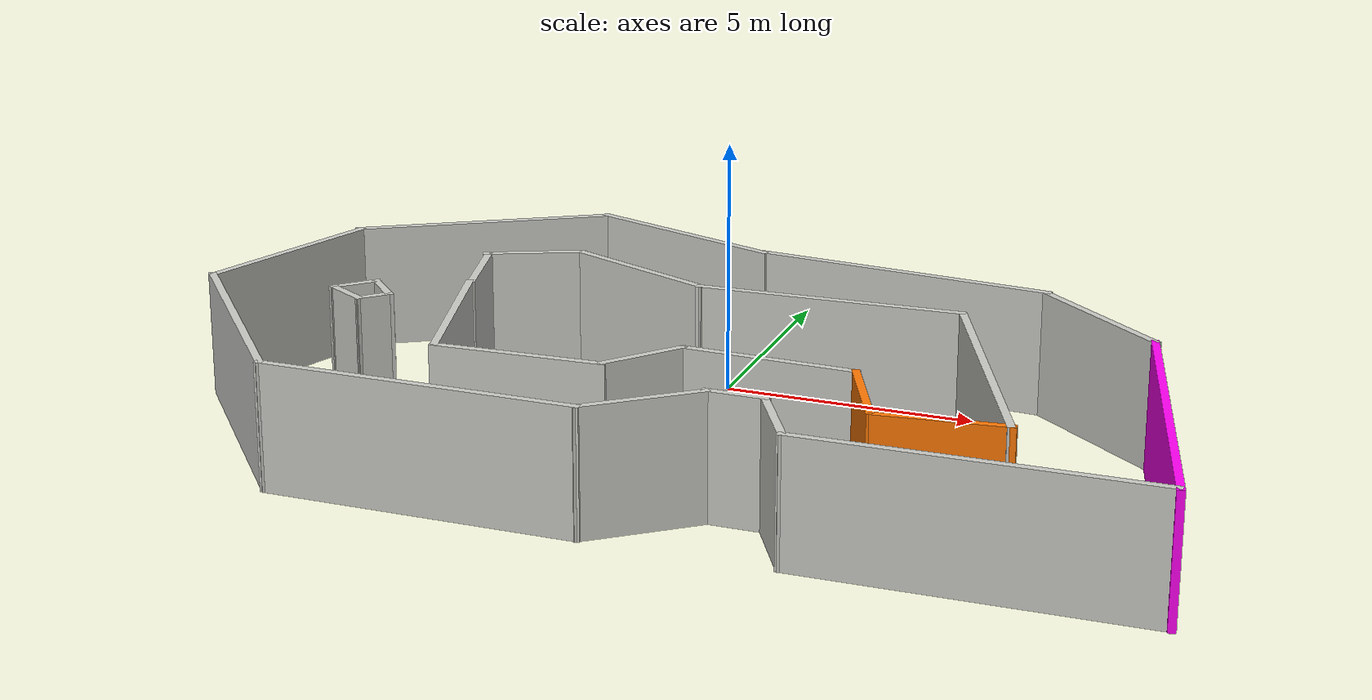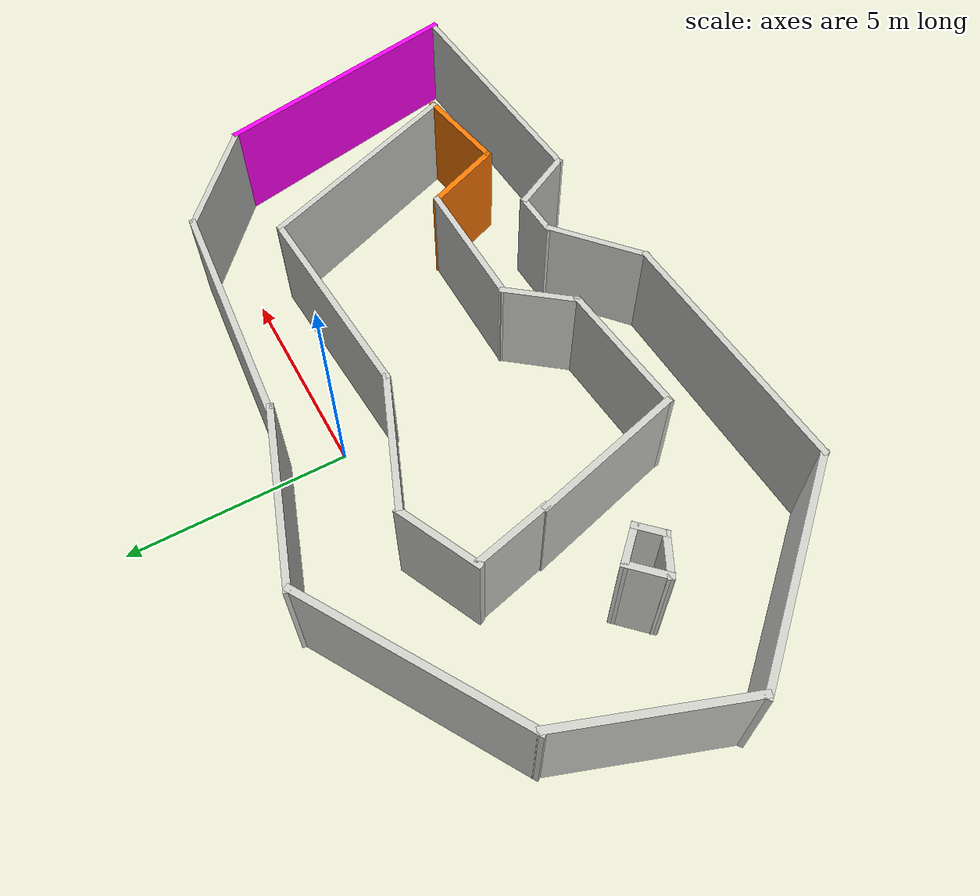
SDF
<?xml version='1.0'?>
<sdf version='1.6'>
  <model name='race_track'>
    <pose frame=''>0.559259 -2.71152 0 0 -0 0</pose>
    <link name='Wall_10'>
      <collision name='Wall_10_Collision'>
        <geometry>
          <box>
            <size>3.44729 0.15 2.5</size>
          </box>
        </geometry>
        <pose frame=''>0 0 1.25 0 -0 0</pose>
      </collision>
      <visual name='Wall_10_Visual'>
        <pose frame=''>0 0 1.25 0 -0 0</pose>
        <geometry>
          <box>
            <size>3.44729 0.15 2.5</size>
          </box>
        </geometry>
        <material>
          <script>
            <uri>file://media/materials/scripts/gazebo.material</uri>
            <name>Gazebo/CeilingTiled</name>
          </script>
          <ambient>0.996078 0.47451 0.0196078 1</ambient>
        </material>
      </visual>
      <pose frame=''>1.80805 -1.78402 0 0 0 -0.022772</pose>
    </link>
    <link name='Wall_11'>
      <collision name='Wall_11_Collision'>
        <geometry>
          <box>
            <size>2.17868 0.15 2.5</size>
          </box>
        </geometry>
        <pose frame=''>0 0 1.25 0 -0 0</pose>
      </collision>
      <visual name='Wall_11_Visual'>
        <pose frame=''>0 0 1.25 0 -0 0</pose>
        <geometry>
          <box>
            <size>2.17868 0.15 2.5</size>
          </box>
        </geometry>
        <material>
          <script>
            <uri>file://media/materials/scripts/gazebo.material</uri>
            <name>Gazebo/Grey</name>
          </script>
          <ambient>0.996078 0.47451 0.0196078 1</ambient>
        </material>
      </visual>
      <pose frame=''>3.86833 -2.74844 0 0 0 -1.15247</pose>
    </link>
    <link name='Wall_12'>
      <collision name='Wall_12_Collision'>
        <geometry>
          <box>
            <size>2.54418 0.15 2.5</size>
          </box>
        </geometry>
        <pose frame=''>0 0 1.25 0 -0 0</pose>
      </collision>
      <visual name='Wall_12_Visual'>
        <pose frame=''>0 0 1.25 0 -0 0</pose>
        <geometry>
          <box>
            <size>2.54418 0.15 2.5</size>
          </box>
        </geometry>
        <material>
          <script>
            <uri>file://media/materials/scripts/gazebo.material</uri>
            <name>Gazebo/Grey</name>
          </script>
          <ambient>0.996078 0.47451 0.0196078 1</ambient>
        </material>
      </visual>
      <pose frame=''>5.50444 -3.53539 0 0 -0 0.117152</pose>
    </link>
    <link name='Wall_13'>
      <collision name='Wall_13_Collision'>
        <geometry>
          <box>
            <size>5.83067 0.15 2.5</size>
          </box>
        </geometry>
        <pose frame=''>0 0 1.25 0 -0 0</pose>
      </collision>
      <visual name='Wall_13_Visual'>
        <pose frame=''>0 0 1.25 0 -0 0</pose>
        <geometry>
          <box>
            <size>5.83067 0.15 2.5</size>
          </box>
        </geometry>
        <material>
          <script>
            <uri>file://media/materials/scripts/gazebo.material</uri>
            <name>Gazebo/CeilingTiled</name>
          </script>
          <ambient>0.996078 0.47451 0.0196078 1</ambient>
        </material>
      </visual>
      <pose frame=''>5.53053 -0.788558 0 0 -0 1.97904</pose>
    </link>
    <link name='Wall_14'>
      <collision name='Wall_14_Collision'>
        <geometry>
          <box>
            <size>5.26793 0.15 2.5</size>
          </box>
        </geometry>
        <pose frame=''>0 0 1.25 0 -0 0</pose>
      </collision>
      <visual name='Wall_14_Visual'>
        <pose frame=''>0 0 1.25 0 -0 0</pose>
        <geometry>
          <box>
            <size>5.26793 0.15 2.5</size>
          </box>
        </geometry>
        <material>
          <script>
            <uri>file://media/materials/scripts/gazebo.material</uri>
            <name>Gazebo/CeilingTiled</name>
          </script>
          <ambient>0.996078 0.47451 0.0196078 1</ambient>
        </material>
      </visual>
      <pose frame=''>1.83029 1.69592 0 0 0 -3.08689</pose>
    </link>
    <link name='Wall_16'>
      <collision name='Wall_16_Collision'>
        <geometry>
          <box>
            <size>3.26126 0.15 2.5</size>
          </box>
        </geometry>
        <pose frame=''>0 0 1.25 0 -0 0</pose>
      </collision>
      <visual name='Wall_16_Visual'>
        <pose frame=''>0 0 1.25 0 -0 0</pose>
        <geometry>
          <box>
            <size>3.26126 0.15 2.5</size>
          </box>
        </geometry>
        <material>
          <script>
            <uri>file://media/materials/scripts/gazebo.material</uri>
            <name>Gazebo/CeilingTiled</name>
          </script>
          <ambient>0.996078 0.47451 0.0196078 1</ambient>
        </material>
      </visual>
      <pose frame=''>-2.17369 2.12243 0 0 -0 2.76891</pose>
    </link>
    <link name='Wall_17'>
      <collision name='Wall_17_Collision'>
        <geometry>
          <box>
            <size>2.03724 0.15 2.5</size>
          </box>
        </geometry>
        <pose frame=''>0 0 1.25 0 -0 0</pose>
      </collision>
      <visual name='Wall_17_Visual'>
        <pose frame=''>0 0 1.25 0 -0 0</pose>
        <geometry>
          <box>
            <size>2.03724 0.15 2.5</size>
          </box>
        </geometry>
        <material>
          <script>
            <uri>file://media/materials/scripts/gazebo.material</uri>
            <name>Gazebo/CeilingTiled</name>
          </script>
          <ambient>0.996078 0.47451 0.0196078 1</ambient>
        </material>
      </visual>
      <pose frame=''>-4.53244 2.32984 0 0 0 -2.71087</pose>
    </link>
    <link name='Wall_19'>
      <collision name='Wall_19_Collision'>
        <geometry>
          <box>
            <size>7 0.15 2.5</size>
          </box>
        </geometry>
        <pose frame=''>0 0 1.25 0 -0 0</pose>
      </collision>
      <visual name='Wall_19_Visual'>
        <pose frame=''>0 0 1.25 0 -0 0</pose>
        <geometry>
          <box>
            <size>7 0.15 2.5</size>
          </box>
        </geometry>
        <material>
          <script>
            <uri>file://media/materials/scripts/gazebo.material</uri>
            <name>Gazebo/Grey</name>
          </script>
          <ambient>1 0.00784314 0.952941 1</ambient>
        </material>
      </visual>
      <pose frame=''>8.95843 -1.75006 0 0 0 -1.309</pose>
    </link>
    <link name='Wall_20'>
      <collision name='Wall_20_Collision'>
        <geometry>
          <box>
            <size>6.77056 0.15 2.5</size>
          </box>
        </geometry>
        <pose frame=''>0 0 1.25 0 -0 0</pose>
      </collision>
      <visual name='Wall_20_Visual'>
        <pose frame=''>0 0 1.25 0 -0 0</pose>
        <geometry>
          <box>
            <size>6.77056 0.15 2.5</size>
          </box>
        </geometry>
        <material>
          <script>
            <uri>file://media/materials/scripts/gazebo.material</uri>
            <name>Gazebo/CeilingTiled</name>
          </script>
          <ambient>1 0.00784314 0.952941 1</ambient>
        </material>
      </visual>
      <pose frame=''>6.49961 -5.05836 0 0 0 -3.13097</pose>
    </link>
    <link name='Wall_21'>
      <collision name='Wall_21_Collision'>
        <geometry>
          <box>
            <size>1.77767 0.15 2.5</size>
          </box>
        </geometry>
        <pose frame=''>0 0 1.25 0 -0 0</pose>
      </collision>
      <visual name='Wall_21_Visual'>
        <pose frame=''>0 0 1.25 0 -0 0</pose>
        <geometry>
          <box>
            <size>1.77767 0.15 2.5</size>
          </box>
        </geometry>
        <material>
          <script>
            <uri>file://media/materials/scripts/gazebo.material</uri>
            <name>Gazebo/CeilingTiled</name>
          </script>
          <ambient>1 0.00784314 0.952941 1</ambient>
        </material>
      </visual>
      <pose frame=''>2.79738 -4.38041 0 0 -0 2.07356</pose>
    </link>
    <link name='Wall_22'>
      <collision name='Wall_22_Collision'>
        <geometry>
          <box>
            <size>1.25 0.15 2.5</size>
          </box>
        </geometry>
        <pose frame=''>0 0 1.25 0 -0 0</pose>
      </collision>
      <visual name='Wall_22_Visual'>
        <pose frame=''>0 0 1.25 0 -0 0</pose>
        <geometry>
          <box>
            <size>1.25 0.15 2.5</size>
          </box>
        </geometry>
        <material>
          <script>
            <uri>file://media/materials/scripts/gazebo.material</uri>
            <name>Gazebo/CeilingTiled</name>
          </script>
          <ambient>1 0.00784314 0.952941 1</ambient>
        </material>
      </visual>
      <pose frame=''>1.85523 -3.63211 0 0 -0 3.14159</pose>
    </link>
    <link name='Wall_23'>
      <collision name='Wall_23_Collision'>
        <geometry>
          <box>
            <size>2.48588 0.15 2.5</size>
          </box>
        </geometry>
        <pose frame=''>0 0 1.25 0 -0 0</pose>
      </collision>
      <visual name='Wall_23_Visual'>
        <pose frame=''>0 0 1.25 0 -0 0</pose>
        <geometry>
          <box>
            <size>2.48588 0.15 2.5</size>
          </box>
        </geometry>
        <material>
          <script>
            <uri>file://media/materials/scripts/gazebo.material</uri>
            <name>Gazebo/CeilingTiled</name>
          </script>
          <ambient>1 0.00784314 0.952941 1</ambient>
        </material>
      </visual>
      <pose frame=''>0.404026 -4.41019 0 0 0 -2.45218</pose>
    </link>
    <link name='Wall_24'>
      <collision name='Wall_24_Collision'>
        <geometry>
          <box>
            <size>6.25 0.15 2.5</size>
          </box>
        </geometry>
        <pose frame=''>0 0 1.25 0 -0 0</pose>
      </collision>
      <visual name='Wall_24_Visual'>
        <pose frame=''>0 0 1.25 0 -0 0</pose>
        <geometry>
          <box>
            <size>6.25 0.15 2.5</size>
          </box>
        </geometry>
        <material>
          <script>
            <uri>file://media/materials/scripts/gazebo.material</uri>
            <name>Gazebo/CeilingTiled</name>
          </script>
          <ambient>1 0.00784314 0.952941 1</ambient>
        </material>
      </visual>
      <pose frame=''>-3.54718 -5.15309 0 0 -0 3.14159</pose>
    </link>
    <link name='Wall_25'>
      <collision name='Wall_25_Collision'>
        <geometry>
          <box>
            <size>5.31282 0.15 2.5</size>
          </box>
        </geometry>
        <pose frame=''>0 0 1.25 0 -0 0</pose>
      </collision>
      <visual name='Wall_25_Visual'>
        <pose frame=''>0 0 1.25 0 -0 0</pose>
        <geometry>
          <box>
            <size>5.31282 0.15 2.5</size>
          </box>
        </geometry>
        <material>
          <script>
            <uri>file://media/materials/scripts/gazebo.material</uri>
            <name>Gazebo/CeilingTiled</name>
          </script>
          <ambient>1 0.00784314 0.952941 1</ambient>
        </material>
      </visual>
      <pose frame=''>-8.21424 -3.14093 0 0 -0 2.24775</pose>
    </link>
    <link name='Wall_26'>
      <collision name='Wall_26_Collision'>
        <geometry>
          <box>
            <size>4.00179 0.15 2.5</size>
          </box>
        </geometry>
        <pose frame=''>0 0 1.25 0 -0 0</pose>
      </collision>
      <visual name='Wall_26_Visual'>
        <pose frame=''>0 0 1.25 0 -0 0</pose>
        <geometry>
          <box>
            <size>4.00179 0.15 2.5</size>
          </box>
        </geometry>
        <material>
          <script>
            <uri>file://media/materials/scripts/gazebo.material</uri>
            <name>Gazebo/CeilingTiled</name>
          </script>
          <ambient>1 0.00784314 0.952941 1</ambient>
        </material>
      </visual>
      <pose frame=''>-9.12478 0.676334 0 0 -0 1.21473</pose>
    </link>
    <link name='Wall_27'>
      <collision name='Wall_27_Collision'>
        <geometry>
          <box>
            <size>5.25099 0.15 2.5</size>
          </box>
        </geometry>
        <pose frame=''>0 0 1.25 0 -0 0</pose>
      </collision>
      <visual name='Wall_27_Visual'>
        <pose frame=''>0 0 1.25 0 -0 0</pose>
        <geometry>
          <box>
            <size>5.25099 0.15 2.5</size>
          </box>
        </geometry>
        <material>
          <script>
            <uri>file://media/materials/scripts/gazebo.material</uri>
            <name>Gazebo/CeilingTiled</name>
          </script>
          <ambient>1 0.00784314 0.952941 1</ambient>
        </material>
      </visual>
      <pose frame=''>-6.30871 3.80545 0 0 -0 0.545824</pose>
    </link>
    <link name='Wall_28'>
      <collision name='Wall_28_Collision'>
        <geometry>
          <box>
            <size>4.20026 0.15 2.5</size>
          </box>
        </geometry>
        <pose frame=''>0 0 1.25 0 -0 0</pose>
      </collision>
      <visual name='Wall_28_Visual'>
        <pose frame=''>0 0 1.25 0 -0 0</pose>
        <geometry>
          <box>
            <size>4.20026 0.15 2.5</size>
          </box>
        </geometry>
        <material>
          <script>
            <uri>file://media/materials/scripts/gazebo.material</uri>
            <name>Gazebo/CeilingTiled</name>
          </script>
          <ambient>1 0.00784314 0.952941 1</ambient>
        </material>
      </visual>
      <pose frame=''>-2.19665 4.55806 0 0 0 -0.304201</pose>
    </link>
    <link name='Wall_29'>
      <collision name='Wall_29_Collision'>
        <geometry>
          <box>
            <size>6.01521 0.15 2.5</size>
          </box>
        </geometry>
        <pose frame=''>0 0 1.25 0 -0 0</pose>
      </collision>
      <visual name='Wall_29_Visual'>
        <pose frame=''>0 0 1.25 0 -0 0</pose>
        <geometry>
          <box>
            <size>6.01521 0.15 2.5</size>
          </box>
        </geometry>
        <material>
          <script>
            <uri>file://media/materials/scripts/gazebo.material</uri>
            <name>Gazebo/CeilingTiled</name>
          </script>
          <ambient>1 0.00784314 0.952941 1</ambient>
        </material>
      </visual>
      <pose frame=''>2.6605 3.77558 0 0 0 -0.072037</pose>
    </link>
    <link name='Wall_30'>
      <collision name='Wall_30_Collision'>
        <geometry>
          <box>
            <size>3.32297 0.15 2.5</size>
          </box>
        </geometry>
        <pose frame=''>0 0 1.25 0 -0 0</pose>
      </collision>
      <visual name='Wall_30_Visual'>
        <pose frame=''>0 0 1.25 0 -0 0</pose>
        <geometry>
          <box>
            <size>3.32297 0.15 2.5</size>
          </box>
        </geometry>
        <material>
          <script>
            <uri>file://media/materials/scripts/gazebo.material</uri>
            <name>Gazebo/CeilingTiled</name>
          </script>
          <ambient>1 0.00784314 0.952941 1</ambient>
        </material>
      </visual>
      <pose frame=''>6.82873 2.54378 0 0 0 -0.67029</pose>
    </link>
    <link name='Wall_32'>
      <collision name='Wall_32_Collision'>
        <geometry>
          <box>
            <size>1 0.15 2.5</size>
          </box>
        </geometry>
        <pose frame=''>0 0 1.25 0 -0 0</pose>
      </collision>
      <visual name='Wall_32_Visual'>
        <pose frame=''>0 0 1.25 0 -0 0</pose>
        <geometry>
          <box>
            <size>1 0.15 2.5</size>
          </box>
        </geometry>
        <material>
          <script>
            <uri>file://media/materials/scripts/gazebo.material</uri>
            <name>Gazebo/CeilingTiled</name>
          </script>
          <ambient>0.227451 0.227451 0.227451 1</ambient>
        </material>
      </visual>
      <pose frame=''>-6.97162 -0.671801 0 0 0 -2.35619</pose>
    </link>
    <link name='Wall_33'>
      <collision name='Wall_33_Collision'>
        <geometry>
          <box>
            <size>1 0.15 2.5</size>
          </box>
        </geometry>
        <pose frame=''>0 0 1.25 0 -0 0</pose>
      </collision>
      <visual name='Wall_33_Visual'>
        <pose frame=''>0 0 1.25 0 -0 0</pose>
        <geometry>
          <box>
            <size>1 0.15 2.5</size>
          </box>
        </geometry>
        <material>
          <script>
            <uri>file://media/materials/scripts/gazebo.material</uri>
            <name>Gazebo/CeilingTiled</name>
          </script>
          <ambient>0.227451 0.227451 0.227451 1</ambient>
        </material>
      </visual>
      <pose frame=''>-6.90408 -1.18482 0 0 0 -0.523599</pose>
    </link>
    <link name='Wall_34'>
      <collision name='Wall_34_Collision'>
        <geometry>
          <box>
            <size>0.75 0.15 2.5</size>
          </box>
        </geometry>
        <pose frame=''>0 0 1.25 0 -0 0</pose>
      </collision>
      <visual name='Wall_34_Visual'>
        <pose frame=''>0 0 1.25 0 -0 0</pose>
        <geometry>
          <box>
            <size>0.75 0.15 2.5</size>
          </box>
        </geometry>
        <material>
          <script>
            <uri>file://media/materials/scripts/gazebo.material</uri>
            <name>Gazebo/CeilingTiled</name>
          </script>
          <ambient>0.227451 0.227451 0.227451 1</ambient>
        </material>
      </visual>
      <pose frame=''>-6.32389 -1.18519 0 0 -0 0.785398</pose>
    </link>
    <link name='Wall_35'>
      <collision name='Wall_35_Collision'>
        <geometry>
          <box>
            <size>0.971585 0.15 2.5</size>
          </box>
        </geometry>
        <pose frame=''>0 0 1.25 0 -0 0</pose>
      </collision>
      <visual name='Wall_35_Visual'>
        <pose frame=''>0 0 1.25 0 -0 0</pose>
        <geometry>
          <box>
            <size>0.971585 0.15 2.5</size>
          </box>
        </geometry>
        <material>
          <script>
            <uri>file://media/materials/scripts/gazebo.material</uri>
            <name>Gazebo/CeilingTiled</name>
          </script>
          <ambient>0.227451 0.227451 0.227451 1</ambient>
        </material>
      </visual>
      <pose frame=''>-6.39143 -0.672169 0 0 -0 2.31967</pose>
    </link>
    <link name='Wall_6'>
      <collision name='Wall_6_Collision'>
        <geometry>
          <box>
            <size>1.83474 0.15 2.5</size>
          </box>
        </geometry>
        <pose frame=''>0 0 1.25 0 -0 0</pose>
      </collision>
      <visual name='Wall_6_Visual'>
        <pose frame=''>0 0 1.25 0 -0 0</pose>
        <geometry>
          <box>
            <size>1.83474 0.15 2.5</size>
          </box>
        </geometry>
        <material>
          <script>
            <uri>file://media/materials/scripts/gazebo.material</uri>
            <name>Gazebo/CeilingTiled</name>
          </script>
          <ambient>0.996078 0.47451 0.0196078 1</ambient>
        </material>
      </visual>
      <pose frame=''>-5.14481 1.08081 0 0 0 -1.34013</pose>
    </link>
    <link name='Wall_7'>
      <collision name='Wall_7_Collision'>
        <geometry>
          <box>
            <size>3.70727 0.15 2.5</size>
          </box>
        </geometry>
        <pose frame=''>0 0 1.25 0 -0 0</pose>
      </collision>
      <visual name='Wall_7_Visual'>
        <pose frame=''>0 0 1.25 0 -0 0</pose>
        <geometry>
          <box>
            <size>3.70727 0.15 2.5</size>
          </box>
        </geometry>
        <material>
          <script>
            <uri>file://media/materials/scripts/gazebo.material</uri>
            <name>Gazebo/CeilingTiled</name>
          </script>
          <ambient>0.996078 0.47451 0.0196078 1</ambient>
        </material>
      </visual>
      <pose frame=''>-4.5409 -1.46093 0 0 0 -1.31705</pose>
    </link>
    <link name='Wall_8'>
      <collision name='Wall_8_Collision'>
        <geometry>
          <box>
            <size>3.37381 0.15 2.5</size>
          </box>
        </geometry>
        <pose frame=''>0 0 1.25 0 -0 0</pose>
      </collision>
      <visual name='Wall_8_Visual'>
        <pose frame=''>0 0 1.25 0 -0 0</pose>
        <geometry>
          <box>
            <size>3.37381 0.15 2.5</size>
          </box>
        </geometry>
        <material>
          <script>
            <uri>file://media/materials/scripts/gazebo.material</uri>
            <name>Gazebo/CeilingTiled</name>
          </script>
          <ambient>0.996078 0.47451 0.0196078 1</ambient>
        </material>
      </visual>
      <pose frame=''>-2.48443 -3.13909 0 0 -0 0.048847</pose>
    </link>
    <link name='Wall_9'>
      <collision name='Wall_9_Collision'>
        <geometry>
          <box>
            <size>1.79465 0.15 2.5</size>
          </box>
        </geometry>
        <pose frame=''>0 0 1.25 0 -0 0</pose>
      </collision>
      <visual name='Wall_9_Visual'>
        <pose frame=''>0 0 1.25 0 -0 0</pose>
        <geometry>
          <box>
            <size>1.79465 0.15 2.5</size>
          </box>
        </geometry>
        <material>
          <script>
            <uri>file://media/materials/scripts/gazebo.material</uri>
            <name>Gazebo/CeilingTiled</name>
          </script>
          <ambient>0.996078 0.47451 0.0196078 1</ambient>
        </material>
      </visual>
      <pose frame=''>-0.357307 -2.38584 0 0 -0 0.890685</pose>
    </link>
    <static>1</static>
  </model>
</sdf>
